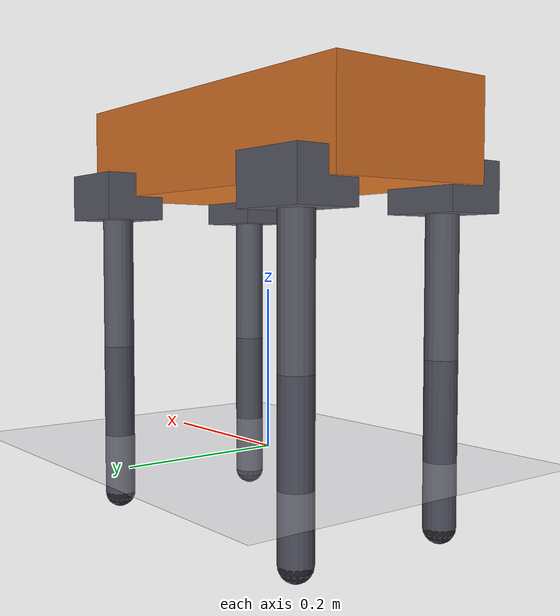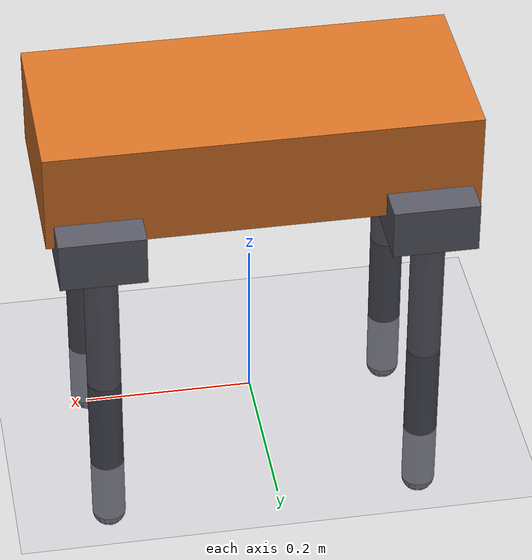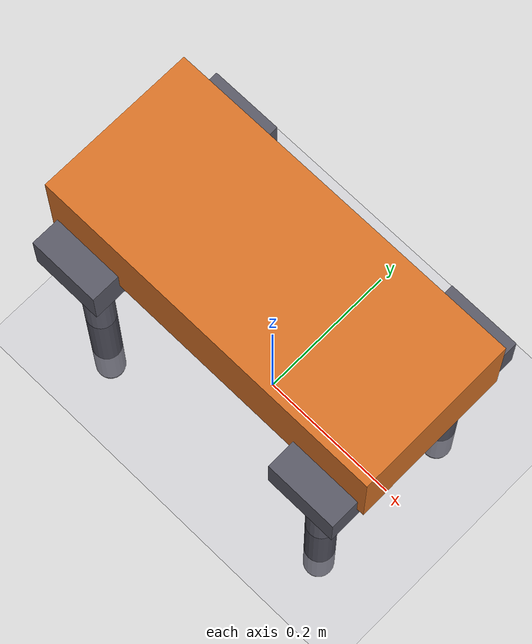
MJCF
<mujoco model="quadruped">
  <!-- 12-DOF 四足机械狗：4 条腿 × 3 关节（hip_ab 横摆 / hip_pitch 髋俯仰 / knee 膝俯仰） -->
  <compiler angle="radian" autolimits="true"/>
  <option timestep="0.005" gravity="0 0 -9.81"/>

  <default>
    <joint damping="0.1" frictionloss="0.0" armature="0.01"/>
    <motor ctrllimited="true" ctrlrange="-33.5 33.5" gear="1"/>
    <geom condim="3"/>
  </default>

  <worldbody>
    <light directional="true" pos="1 1 2" dir="-0.5 -0.5 -1"/>
    <camera name="track" mode="trackcom" target="torso" pos="1.0 -1.0 0.7"
            xyaxes="0.707 0.707 0  -0.311 0.311 0.891"/>
    <geom name="floor" type="plane" pos="0 0 0" size="20 20 0.1"
          friction="1.0 0.005 0.0001" rgba="0.80 0.80 0.85 1"/>

    <!-- 躯干：自由关节基座，四条腿都嵌套在躯干下 -->
    <body name="torso" pos="0 0 0.38">
      <freejoint/>
      <geom name="torso" type="box" size="0.25 0.11 0.06" mass="5.0"
            rgba="0.85 0.45 0.15 1"/>

    <!-- 前左腿 -->
    <body name="FL_hip" pos="0.19 0.11 -0.06">
      <joint name="FL_hip_ab" type="hinge" axis="1 0 0" range="-0.5 0.5"/>
      <geom type="box" size="0.05 0.04 0.03" mass="0.8" rgba="0.35 0.35 0.40 1"/>
      <body name="FL_thigh" pos="0 0 0">
        <joint name="FL_hip_pitch" type="hinge" axis="0 1 0" range="-1.0 1.4"/>
        <geom type="capsule" fromto="0 0 0  0 0 -0.2" size="0.02" mass="0.6" rgba="0.35 0.35 0.40 1"/>
        <body name="FL_shank" pos="0 0 -0.2">
          <joint name="FL_knee" type="hinge" axis="0 1 0" range="-2.9 0.0"/>
          <geom type="capsule" fromto="0 0 0  0 0 -0.2" size="0.02" mass="0.35" rgba="0.30 0.30 0.35 1"/>
          <geom name="FL_foot" type="sphere" size="0.02" pos="0 0 -0.2" mass="0.05"
                friction="1.0 0.005 0.0001" rgba="0.15 0.15 0.18 1"/>
        </body>
      </body>
    </body>

    <!-- 前右腿 -->
    <body name="FR_hip" pos="0.19 -0.11 -0.06">
      <joint name="FR_hip_ab" type="hinge" axis="1 0 0" range="-0.5 0.5"/>
      <geom type="box" size="0.05 0.04 0.03" mass="0.8" rgba="0.35 0.35 0.40 1"/>
      <body name="FR_thigh" pos="0 0 0">
        <joint name="FR_hip_pitch" type="hinge" axis="0 1 0" range="-1.0 1.4"/>
        <geom type="capsule" fromto="0 0 0  0 0 -0.2" size="0.02" mass="0.6" rgba="0.35 0.35 0.40 1"/>
        <body name="FR_shank" pos="0 0 -0.2">
          <joint name="FR_knee" type="hinge" axis="0 1 0" range="-2.9 0.0"/>
          <geom type="capsule" fromto="0 0 0  0 0 -0.2" size="0.02" mass="0.35" rgba="0.30 0.30 0.35 1"/>
          <geom name="FR_foot" type="sphere" size="0.02" pos="0 0 -0.2" mass="0.05"
                friction="1.0 0.005 0.0001" rgba="0.15 0.15 0.18 1"/>
        </body>
      </body>
    </body>

    <!-- 后左腿 -->
    <body name="RL_hip" pos="-0.19 0.11 -0.06">
      <joint name="RL_hip_ab" type="hinge" axis="1 0 0" range="-0.5 0.5"/>
      <geom type="box" size="0.05 0.04 0.03" mass="0.8" rgba="0.35 0.35 0.40 1"/>
      <body name="RL_thigh" pos="0 0 0">
        <joint name="RL_hip_pitch" type="hinge" axis="0 1 0" range="-1.0 1.4"/>
        <geom type="capsule" fromto="0 0 0  0 0 -0.2" size="0.02" mass="0.6" rgba="0.35 0.35 0.40 1"/>
        <body name="RL_shank" pos="0 0 -0.2">
          <joint name="RL_knee" type="hinge" axis="0 1 0" range="-2.9 0.0"/>
          <geom type="capsule" fromto="0 0 0  0 0 -0.2" size="0.02" mass="0.35" rgba="0.30 0.30 0.35 1"/>
          <geom name="RL_foot" type="sphere" size="0.02" pos="0 0 -0.2" mass="0.05"
                friction="1.0 0.005 0.0001" rgba="0.15 0.15 0.18 1"/>
        </body>
      </body>
    </body>

    <!-- 后右腿 -->
    <body name="RR_hip" pos="-0.19 -0.11 -0.06">
      <joint name="RR_hip_ab" type="hinge" axis="1 0 0" range="-0.5 0.5"/>
      <geom type="box" size="0.05 0.04 0.03" mass="0.8" rgba="0.35 0.35 0.40 1"/>
      <body name="RR_thigh" pos="0 0 0">
        <joint name="RR_hip_pitch" type="hinge" axis="0 1 0" range="-1.0 1.4"/>
        <geom type="capsule" fromto="0 0 0  0 0 -0.2" size="0.02" mass="0.6" rgba="0.35 0.35 0.40 1"/>
        <body name="RR_shank" pos="0 0 -0.2">
          <joint name="RR_knee" type="hinge" axis="0 1 0" range="-2.9 0.0"/>
          <geom type="capsule" fromto="0 0 0  0 0 -0.2" size="0.02" mass="0.35" rgba="0.30 0.30 0.35 1"/>
          <geom name="RR_foot" type="sphere" size="0.02" pos="0 0 -0.2" mass="0.05"
                friction="1.0 0.005 0.0001" rgba="0.15 0.15 0.18 1"/>
        </body>
      </body>
    </body>
    </body><!-- torso -->
  </worldbody>

  <!-- 默认站姿（参照 A1）：腿序 FL FR RL RR，
       hip_ab ±0.1（足端外撇）、前腿 hip_pitch 0.8 / 后腿 1.0、膝 -1.5 -->
  <keyframe>
    <key name="home" qpos="0 0 0.38 1 0 0 0
                           0.1 0.8 -1.5  -0.1 0.8 -1.5  0.1 1.0 -1.5  -0.1 1.0 -1.5"/>
  </keyframe>

  <!-- 12 个电机（PD 力矩由环境代码计算，ctrl 即力矩 Nm） -->
  <actuator>
    <motor name="FL_hip_ab"   joint="FL_hip_ab"/>
    <motor name="FL_hip_pitch" joint="FL_hip_pitch"/>
    <motor name="FL_knee"     joint="FL_knee"/>
    <motor name="FR_hip_ab"   joint="FR_hip_ab"/>
    <motor name="FR_hip_pitch" joint="FR_hip_pitch"/>
    <motor name="FR_knee"     joint="FR_knee"/>
    <motor name="RL_hip_ab"   joint="RL_hip_ab"/>
    <motor name="RL_hip_pitch" joint="RL_hip_pitch"/>
    <motor name="RL_knee"     joint="RL_knee"/>
    <motor name="RR_hip_ab"   joint="RR_hip_ab"/>
    <motor name="RR_hip_pitch" joint="RR_hip_pitch"/>
    <motor name="RR_knee"     joint="RR_knee"/>
  </actuator>
</mujoco>
